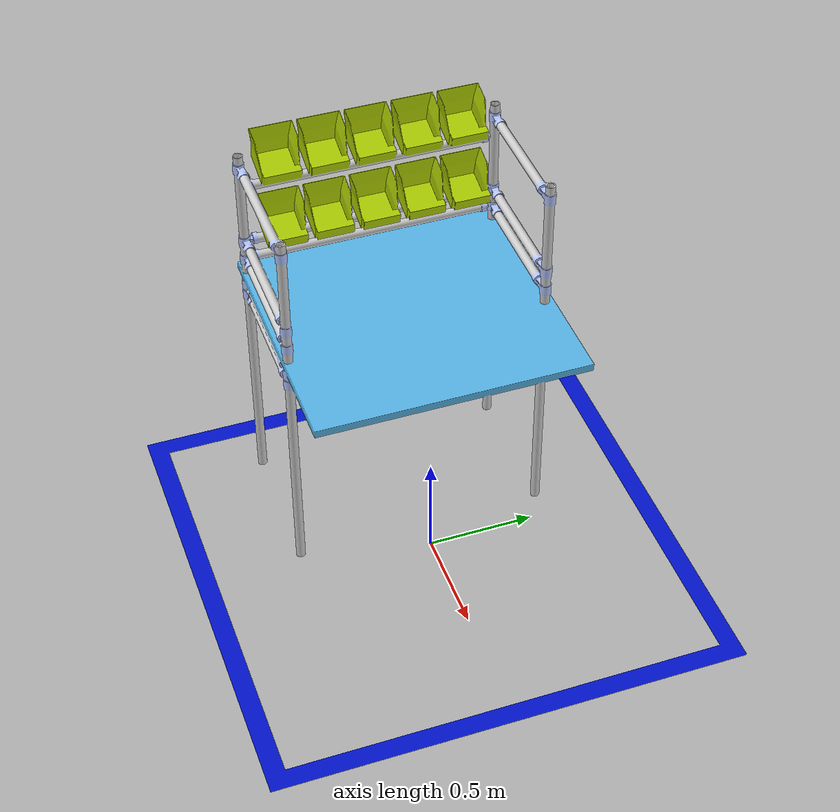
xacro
<?xml version="1.0" ?>
<robot name="assembly_station" xmlns:xacro="http://www.ros.org/wiki/xacro">

  <xacro:arg name="assembly_station_prefix" default="assembly_station_"/>
  <xacro:arg name="assembly_station_parent" default="world_interface"/>
  <xacro:arg name="mesh_path" default="$(find ros_industrial_support)"/>

  <xacro:arg name="x" default="0"/>
  <xacro:arg name="y" default="0"/>
  <xacro:arg name="z" default="0"/>
  <xacro:arg name="R" default="0"/>
  <xacro:arg name="P" default="0"/>
  <xacro:arg name="Y" default="0"/>

  <link name="world_interface" />

  <!-- URDF -->
  <xacro:include filename="$(find ros_industrial_support)/urdf/assembly_station/assembly_station.urdf.xacro"/>
  <xacro:assembly_station_urdf assembly_station_prefix="$(arg assembly_station_prefix)" assembly_station_parent="$(arg assembly_station_parent)" mesh_path="$(arg mesh_path)">
     <origin xyz="$(arg x) $(arg y) $(arg z)" rpy="$(arg R) $(arg P) $(arg Y)"/>
  </xacro:assembly_station_urdf>

  <!-- Gazebo -->
  <xacro:include filename="$(find ros_industrial_support)/urdf/assembly_station/assembly_station.gazebo.xacro"/>

</robot>

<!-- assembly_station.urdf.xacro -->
<robot name="assembly_station_urdf" xmlns:xacro="http://www.ros.org/wiki/xacro">
    <xacro:macro name="assembly_station_urdf" params="assembly_station_parent assembly_station_prefix mesh_path:='package://ros_industrial_support' *origin">

  <joint name="${assembly_station_prefix}joint" type="fixed">
    <xacro:insert_block name="origin" />
    <parent link="${assembly_station_parent}"/>
    <child link="${assembly_station_prefix}origin"/>
  </joint>

    <!-- Links -->
    <link name="${assembly_station_prefix}origin">
      <visual>
        <geometry>
          <mesh filename="${mesh_path}/meshes/assembly_station/meshes/assembly_station.dae" scale="1.1 1.1 1.1"/>
        </geometry>
      </visual>
      <collision>
        <geometry>
          <mesh filename="${mesh_path}/meshes/assembly_station/meshes/assembly_station.dae" scale="1.1 1.1 1.1"/>
        </geometry>
      </collision>
      <inertial>
        <inertia ixx="1.0" ixy="0" ixz="0"
                 iyy="1.0" iyz="0"
                 izz="1.0" />
        <mass value="100" />
      </inertial>
    </link>
  </xacro:macro>
</robot>
